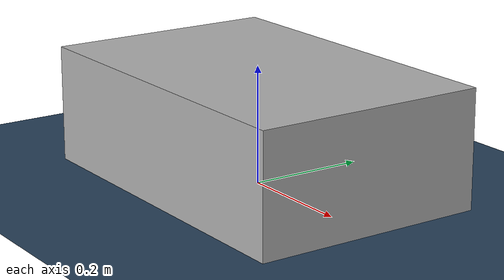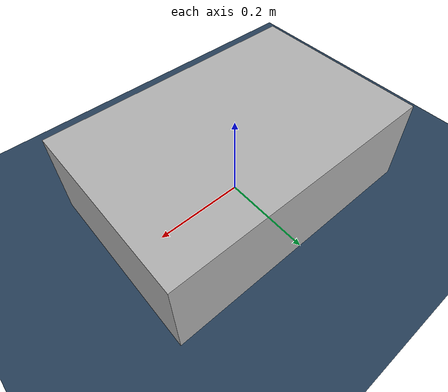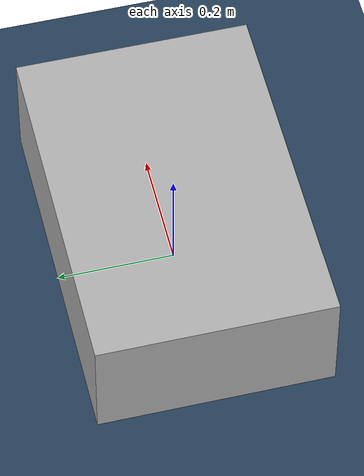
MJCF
<mujoco model="simple_panda">
  <option timestep="0.002" gravity="0 0 -9.81"/>

  <asset>
    <texture type="skybox" builtin="gradient" rgb1="0.4 0.6 0.8" rgb2="0.1 0.2 0.3" width="512" height="512"/>
    <texture type="2d" name="groundplane" builtin="checker" mark="edge" rgb1="0.2 0.3 0.4" rgb2="0.1 0.2 0.3" markrgb="0.8 0.8 0.8" width="300" height="300"/>
    <material name="groundplane" texture="groundplane" texuniform="true"/>
  </asset>

  <worldbody>
    <light directional="true" pos="0 0 3" dir="0 0 -1"/>
    <geom name="floor" size="10 10 0.1" type="plane" material="groundplane"/>

    <!-- Mobile base (holonomic) -->
    <body name="mobile_base" pos="0 0 0.1">
      <geom name="base_box" size="0.3 0.2 0.1" type="box" rgba="0.7 0.7 0.7 1"/>
      <joint name="mobilebase0_joint_mobile_side" type="slide" axis="1 0 0" limited="false"/>
      <joint name="mobilebase0_joint_mobile_forward" type="slide" axis="0 1 0" limited="false"/>
      <joint name="mobilebase0_joint_mobile_yaw" type="hinge" axis="0 0 1" limited="false"/>
    </body>
  </worldbody>

  <actuator>
    <velocity name="mobilebase0_actuator_mobile_side" joint="mobilebase0_joint_mobile_side" kv="1000" ctrlrange="-1.0 1.0" forcelimited="true" forcerange="-600 600"/>
    <velocity name="mobilebase0_actuator_mobile_forward" joint="mobilebase0_joint_mobile_forward" kv="1000" ctrlrange="-1.0 1.0" forcelimited="true" forcerange="-600 600"/>
    <velocity name="mobilebase0_actuator_mobile_yaw" joint="mobilebase0_joint_mobile_yaw" kv="1500" ctrlrange="-1.5 1.5" forcelimited="true" forcerange="-600 600"/>
  </actuator>
</mujoco>
